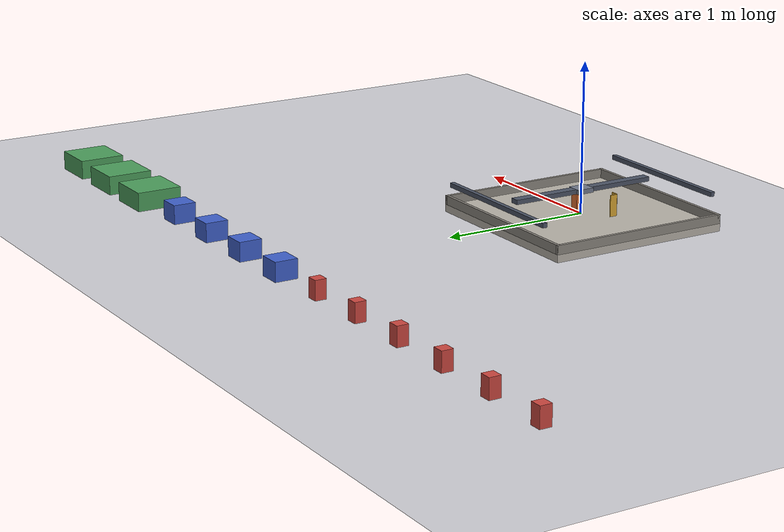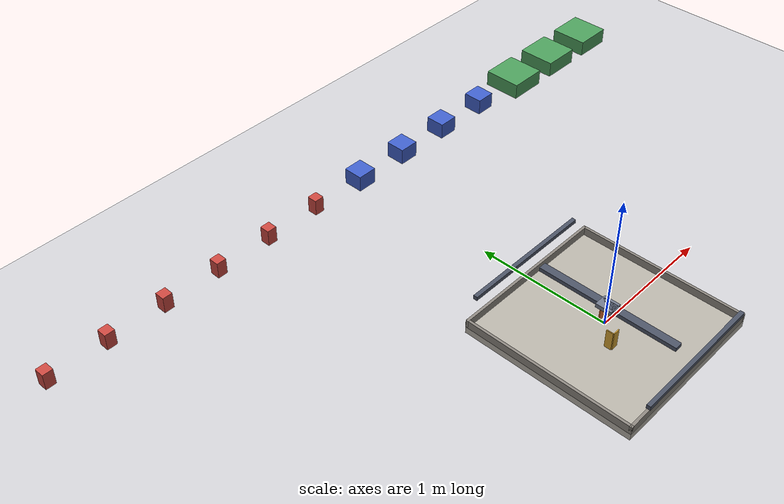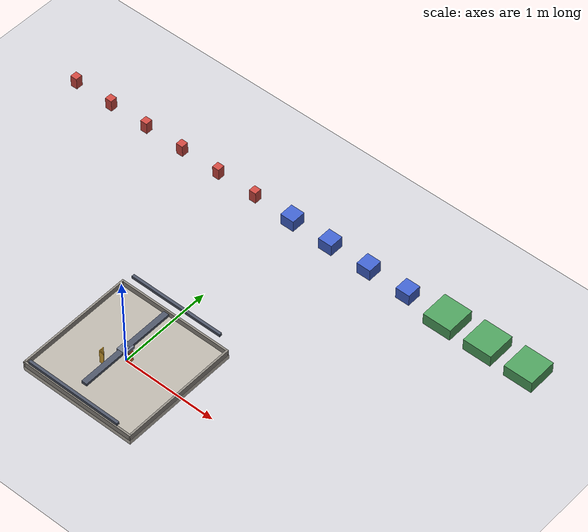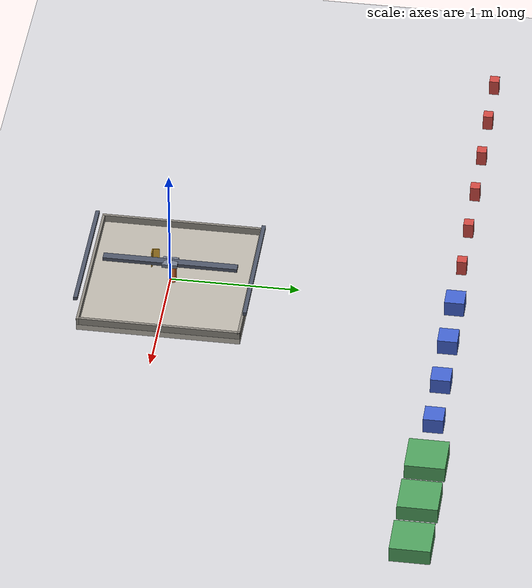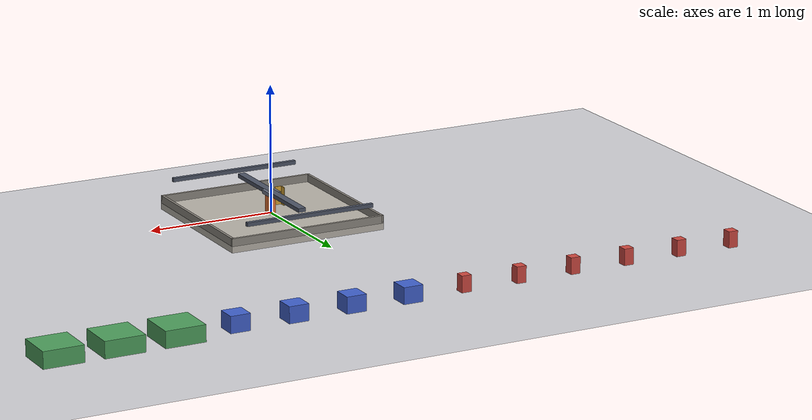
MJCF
<mujoco model="item_sort">
  <compiler angle="radian"/>
  <option timestep="0.001" gravity="0 0 -9.81" integrator="implicitfast"/>

  <default>
    <geom friction="0.5 0.005 0.0001" rgba="0.60 0.60 0.65 1"/>
    <joint limited="true"/>
    <motor gear="1"/>
    <!-- Non-colliding structure: rails, bridge beam, carriage body. -->
    <default class="gantry">
      <geom contype="0" conaffinity="0" rgba="0.30 0.33 0.40 1"/>
    </default>
    <default class="box">
      <geom type="box" friction="0.5 0.005 0.0001"/>
      <default class="small">
        <geom size="0.0381 0.0381 0.0635" mass="0.20" rgba="0.80 0.28 0.25 1"/>
      </default>
      <default class="medium">
        <geom size="0.0762 0.0762 0.0635" mass="0.70" rgba="0.25 0.38 0.80 1"/>
      </default>
      <default class="large">
        <geom size="0.1524 0.1524 0.0635" mass="2.50" rgba="0.30 0.62 0.36 1"/>
      </default>
    </default>
  </default>

  <visual>
    <headlight diffuse="0.5 0.5 0.5" ambient="0.3 0.3 0.3"/>
  </visual>

  <worldbody>
    <light pos="0 0 2.5" dir="0 0 -1" diffuse="0.8 0.8 0.8"/>
    <geom name="ground" type="plane" pos="0 0 -0.05" size="0 0 0.1"
          rgba="0.82 0.82 0.84 1"/>

    <!-- ===================== PLATFORM ===================== -->
    <geom name="platform" type="box" pos="0 0 -0.025" size="0.6296 0.6296 0.025"
          rgba="0.72 0.70 0.66 1"/>

    <geom name="wall_xp" type="box" pos=" 0.6196 0      0.03" size="0.01 0.6296 0.03"
          rgba="0.55 0.53 0.50 1"/>
    <geom name="wall_xn" type="box" pos="-0.6196 0      0.03" size="0.01 0.6296 0.03"
          rgba="0.55 0.53 0.50 1"/>
    <geom name="wall_yp" type="box" pos=" 0      0.6196 0.03" size="0.6296 0.01 0.03"
          rgba="0.55 0.53 0.50 1"/>
    <geom name="wall_yn" type="box" pos=" 0     -0.6196 0.03" size="0.6296 0.01 0.03"
          rgba="0.55 0.53 0.50 1"/>

    <!-- ===================== GANTRY ===================== -->
    <!-- Static side rails the bridge would ride on (cosmetic). -->
    <geom name="rail_yp" class="gantry" type="box" pos="0  0.65 0.162" size="0.52 0.015 0.015"/>
    <geom name="rail_yn" class="gantry" type="box" pos="0 -0.65 0.162" size="0.52 0.015 0.015"/>

    <body name="bridge" pos="0 0 0.162">
      <joint name="axis_x" type="slide" axis="1 0 0" range="-0.44 0.44"
             damping="12" frictionloss="1.5" armature="1.0"/>
      <geom class="gantry" type="box" size="0.030 0.52 0.015" mass="3.0"/>

      <!-- Y axis: smaller carriage riding along the bridge. Same travel as x;
           the bridge is long enough (0.52 > 0.44 + carriage half) to carry it
           the whole way. -->
      <body name="carriage" pos="0 0 0">
        <joint name="axis_y" type="slide" axis="0 1 0" range="-0.44 0.44"
               damping="6" frictionloss="0.8" armature="0.4"/>
        <geom class="gantry" type="box" size="0.050 0.060 0.015" mass="0.8"
              rgba="0.45 0.48 0.55 1"/>

        <body name="bracket_a" pos="0 0 0">
          <geom name="bracket_a_x" type="box" pos="-0.163279 -0.134704 -0.0865"
                size="0.003175 0.025400 0.0715" mass="0.124968"
                rgba="0.85 0.65 0.20 1" friction="0.6 0.005 0.0001"/>
          <geom name="bracket_a_y" type="box" pos="-0.134704 -0.163279 -0.0865"
                size="0.025400 0.003175 0.0715" mass="0.124968"
                rgba="0.85 0.65 0.20 1" friction="0.6 0.005 0.0001"/>
        </body>

        <body name="bracket_b" pos="0 0 0">
          <joint name="axis_jaw" type="slide" axis="1 1 0" range="-0.17 0.17"
                 damping="5" frictionloss="0.6" armature="0.3"/>
          <geom name="bracket_b_x" type="box" pos="0.043071 0.014496 -0.0865"
                size="0.003175 0.025400 0.0715" mass="0.124968"
                rgba="0.90 0.45 0.20 1" friction="0.6 0.005 0.0001"/>
          <geom name="bracket_b_y" type="box" pos="0.014496 0.043071 -0.0865"
                size="0.025400 0.003175 0.0715" mass="0.124968"
                rgba="0.90 0.45 0.20 1" friction="0.6 0.005 0.0001"/>
        </body>
      </body>
    </body>

    <!-- ===================== BOX POOL ===================== -->
    <body name="small1" pos="-2.70 2.20 0.0135"><freejoint/><geom name="small1_geom" class="small"/></body>
    <body name="small2" pos="-2.25 2.20 0.0135"><freejoint/><geom name="small2_geom" class="small"/></body>
    <body name="small3" pos="-1.80 2.20 0.0135"><freejoint/><geom name="small3_geom" class="small"/></body>
    <body name="small4" pos="-1.35 2.20 0.0135"><freejoint/><geom name="small4_geom" class="small"/></body>
    <body name="small5" pos="-0.90 2.20 0.0135"><freejoint/><geom name="small5_geom" class="small"/></body>
    <body name="small6" pos="-0.45 2.20 0.0135"><freejoint/><geom name="small6_geom" class="small"/></body>

    <body name="medium1" pos="0.00 2.20 0.0135"><freejoint/><geom name="medium1_geom" class="medium"/></body>
    <body name="medium2" pos="0.45 2.20 0.0135"><freejoint/><geom name="medium2_geom" class="medium"/></body>
    <body name="medium3" pos="0.90 2.20 0.0135"><freejoint/><geom name="medium3_geom" class="medium"/></body>
    <body name="medium4" pos="1.35 2.20 0.0135"><freejoint/><geom name="medium4_geom" class="medium"/></body>

    <body name="large1" pos="1.80 2.20 0.0135"><freejoint/><geom name="large1_geom" class="large"/></body>
    <body name="large2" pos="2.25 2.20 0.0135"><freejoint/><geom name="large2_geom" class="large"/></body>
    <body name="large3" pos="2.70 2.20 0.0135"><freejoint/><geom name="large3_geom" class="large"/></body>
  </worldbody>

  <contact>
    <pair geom1="platform" geom2="small1_geom"  friction="0.5 0.5 0.005 0.0001 0.0001"/>
    <pair geom1="platform" geom2="small2_geom"  friction="0.5 0.5 0.005 0.0001 0.0001"/>
    <pair geom1="platform" geom2="small3_geom"  friction="0.5 0.5 0.005 0.0001 0.0001"/>
    <pair geom1="platform" geom2="small4_geom"  friction="0.5 0.5 0.005 0.0001 0.0001"/>
    <pair geom1="platform" geom2="small5_geom"  friction="0.5 0.5 0.005 0.0001 0.0001"/>
    <pair geom1="platform" geom2="small6_geom"  friction="0.5 0.5 0.005 0.0001 0.0001"/>
    <pair geom1="platform" geom2="medium1_geom" friction="0.5 0.5 0.005 0.0001 0.0001"/>
    <pair geom1="platform" geom2="medium2_geom" friction="0.5 0.5 0.005 0.0001 0.0001"/>
    <pair geom1="platform" geom2="medium3_geom" friction="0.5 0.5 0.005 0.0001 0.0001"/>
    <pair geom1="platform" geom2="medium4_geom" friction="0.5 0.5 0.005 0.0001 0.0001"/>
    <pair geom1="platform" geom2="large1_geom"  friction="0.5 0.5 0.005 0.0001 0.0001"/>
    <pair geom1="platform" geom2="large2_geom"  friction="0.5 0.5 0.005 0.0001 0.0001"/>
    <pair geom1="platform" geom2="large3_geom"  friction="0.5 0.5 0.005 0.0001 0.0001"/>
  </contact>

  <!-- Actuator order defines the axis vector used everywhere (AXIS_NAMES):
       [x, y, jaw]. N on all three slides; ctrlrange must match
       config.MAX_FORCE. -->
  <actuator>
    <motor name="axis_x"   joint="axis_x"   ctrlrange="-120 120"/>
    <motor name="axis_y"   joint="axis_y"   ctrlrange="-80 80"/>
    <motor name="axis_jaw" joint="axis_jaw" ctrlrange="-60 60"/>
  </actuator>

</mujoco>
